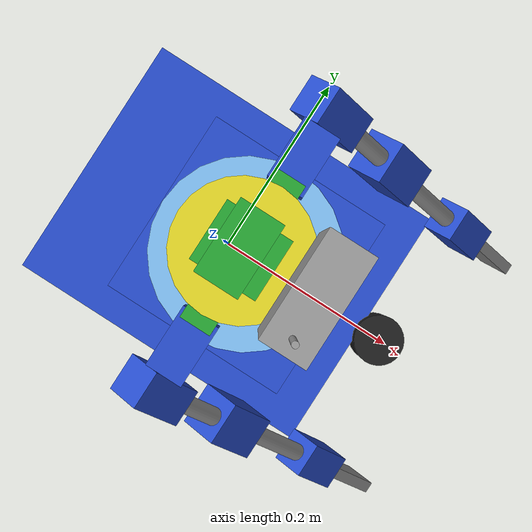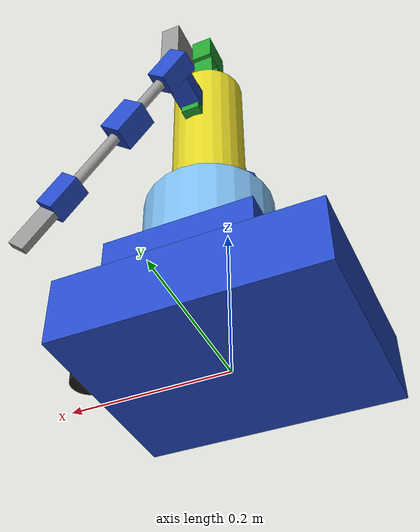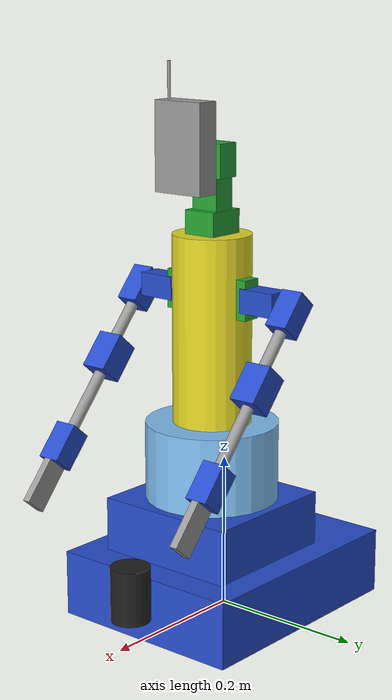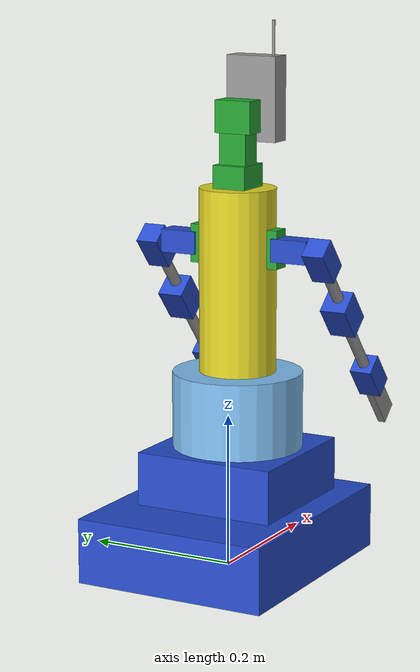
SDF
<sdf version='1.6'>
  <model name='pi_robot'>
    <link name='base_link'>
      <pose frame=''>0 0 0 0 -0 0</pose>
      <inertial>
        <pose frame=''>0.009583 0 0.053646 0 -0 0</pose>
        <mass>12</mass>
        <inertia>
          <ixx>4.01509</ixx>
          <ixy>0</ixy>
          <ixz>-0.00419323</ixz>
          <iyy>4.03082</iyy>
          <iyz>0</iyz>
          <izz>4.01572</izz>
        </inertia>
      </inertial>
      <collision name='base_link_collision'>
        <pose frame=''>0 0 0.0425 0 -0 0</pose>
        <geometry>
          <box>
            <size>0.32 0.26 0.085</size>
          </box>
        </geometry>
      </collision>
      <collision name='base_link_fixed_joint_lump__base_laser_collision_1'>
        <pose frame=''>0.18 0 0.07 0 -0 0</pose>
        <geometry>
          <cylinder>
            <length>0.07</length>
            <radius>0.025</radius>
          </cylinder>
        </geometry>
      </collision>
      <collision name='base_link_fixed_joint_lump__cpu_link_collision_2'>
        <pose frame=''>0.025 0 0.12 0 -0 0</pose>
        <geometry>
          <box>
            <size>0.19 0.19 0.07</size>
          </box>
        </geometry>
      </collision>
      <collision name='base_link_fixed_joint_lump__upper_base_link_collision_3'>
        <pose frame=''>0.025 0 0.205 0 -0 0</pose>
        <geometry>
          <cylinder>
            <length>0.1</length>
            <radius>0.085</radius>
          </cylinder>
        </geometry>
      </collision>
      <visual name='base_link_visual'>
        <pose frame=''>0 0 0.0425 0 -0 0</pose>
        <geometry>
          <box>
            <size>0.32 0.26 0.085</size>
          </box>
        </geometry>
        <material>
            <script>
            <uri>file://media/materials/scripts/gazebo.material</uri>
            <name>Gazebo/Blue</name>
            </script>
        </material>
      </visual>
      <visual name='base_link_fixed_joint_lump__base_laser_visual_1'>
        <pose frame=''>0.18 0 0.07 0 -0 0</pose>
        <geometry>
          <cylinder>
            <length>0.07</length>
            <radius>0.025</radius>
          </cylinder>
        </geometry>
        <material>
            <script>
            <uri>file://media/materials/scripts/gazebo.material</uri>
            <name>Gazebo/Black</name>
            </script>
        </material>
      </visual>
      <visual name='base_link_fixed_joint_lump__cpu_link_visual_2'>
        <pose frame=''>0.025 0 0.12 0 -0 0</pose>
        <geometry>
          <box>
            <size>0.19 0.19 0.07</size>
          </box>
        </geometry>
        <material>
            <script>
            <uri>file://media/materials/scripts/gazebo.material</uri>
            <name>Gazebo/Blue</name>
            </script>
        </material>
      </visual>
      <visual name='base_link_fixed_joint_lump__upper_base_link_visual_3'>
        <pose frame=''>0.025 0 0.205 0 -0 0</pose>
        <geometry>
          <cylinder>
            <length>0.1</length>
            <radius>0.085</radius>
          </cylinder>
        </geometry>
        <material>
            <script>
            <uri>file://media/materials/scripts/gazebo.material</uri>
            <name>Gazebo/SkyBlue</name>
            </script>
        </material>
      </visual>
    </link>

    <link name='torso_link'>
      <pose frame=''>0.025 0 0.255 0 -0 0</pose>
      <inertial>
        <pose frame=''>0 0 0.174375 0 -0 0</pose>
        <mass>2</mass>
        <inertia>
          <ixx>4.00726</ixx>
          <ixy>0</ixy>
          <ixz>0</ixz>
          <iyy>4.00424</iyy>
          <iyz>0</iyz>
          <izz>4.00303</izz>
        </inertia>
      </inertial>
      <collision name='torso_link_collision'>
        <pose frame=''>0 0 0.12 0 -0 0</pose>
        <geometry>
          <cylinder>
            <length>0.24</length>
            <radius>0.05</radius>
          </cylinder>
        </geometry>
      </collision>
      <collision name='torso_link_fixed_joint_lump__head_pan_link_collision_1'>
        <pose frame=''>0 0 0.2475 0 -0 0</pose>
        <geometry>
          <box>
            <size>0.05 0.045 0.045</size>
          </box>
        </geometry>
      </collision>
      <collision name='torso_link_fixed_joint_lump__left_shoulder_link_collision_2'>
        <pose frame=''>0 0.055 0.165 0 -0 0</pose>
        <geometry>
          <box>
            <size>0.025 0.015 0.05</size>
          </box>
        </geometry>
      </collision>
      <collision name='torso_link_fixed_joint_lump__right_shoulder_link_collision_3'>
        <pose frame=''>0 -0.055 0.165 0 -0 0</pose>
        <geometry>
          <box>
            <size>0.025 0.015 0.05</size>
          </box>
        </geometry>
      </collision>
      <visual name='torso_link_visual'>
        <pose frame=''>0 0 0.12 0 -0 0</pose>
        <geometry>
          <cylinder>
            <length>0.24</length>
            <radius>0.05</radius>
          </cylinder>
        </geometry>
        <material>
            <script>
            <uri>file://media/materials/scripts/gazebo.material</uri>
            <name>Gazebo/Yellow</name>
            </script>
        </material>
      </visual>
      <visual name='torso_link_fixed_joint_lump__head_pan_link_visual_1'>
        <pose frame=''>0 0 0.2475 0 -0 0</pose>
        <geometry>
          <box>
            <size>0.05 0.045 0.045</size>
          </box>
        </geometry>
        <material>
            <script>
            <uri>file://media/materials/scripts/gazebo.material</uri>
            <name>Gazebo/Green</name>
            </script>
        </material>
      </visual>
      <visual name='torso_link_fixed_joint_lump__left_shoulder_link_visual_2'>
        <pose frame=''>0 0.055 0.165 0 -0 0</pose>
        <geometry>
          <box>
            <size>0.025 0.015 0.05</size>
          </box>
        </geometry>
        <material>
            <script>
            <uri>file://media/materials/scripts/gazebo.material</uri>
            <name>Gazebo/Green</name>
            </script>
        </material>
      </visual>
      <visual name='torso_link_fixed_joint_lump__right_shoulder_link_visual_3'>
        <pose frame=''>0 -0.055 0.165 0 -0 0</pose>
        <geometry>
          <box>
            <size>0.025 0.015 0.05</size>
          </box>
        </geometry>
        <material>
            <script>
            <uri>file://media/materials/scripts/gazebo.material</uri>
            <name>Gazebo/Green</name>
            </script>
        </material>
      </visual>
    </link>

    <joint name='torso_joint' type='revolute'>
      <child>torso_link</child>
      <parent>base_link</parent>
      <axis>
        <xyz>0 0 1</xyz>
        <limit>
          <lower>-3.1416</lower>
          <upper>3.1416</upper>
          <effort>10</effort>
          <velocity>3</velocity>
        </limit>
        <dynamics>
          <spring_reference>0</spring_reference>
          <spring_stiffness>0</spring_stiffness>
        </dynamics>
        <use_parent_model_frame>1</use_parent_model_frame>
      </axis>
    </joint>

    <link name='head_tilt_link'>
      <pose frame=''>0.025 0 0.525 0 -0 0</pose>
      <inertial>
        <pose frame=''>0 0 0.02 0 -0 0</pose>
        <mass>0.5</mass>
        <inertia>
          <ixx>1</ixx>
          <ixy>0</ixy>
          <ixz>0</ixz>
          <iyy>1</iyy>
          <iyz>0</iyz>
          <izz>1</izz>
        </inertia>
      </inertial>
      <collision name='head_tilt_link_collision'>
        <pose frame=''>0 0 0.02 0 -0 0</pose>
        <geometry>
          <box>
            <size>0.03 0.038 0.04</size>
          </box>
        </geometry>
      </collision>
      <visual name='head_tilt_link_visual'>
        <pose frame=''>0 0 0.02 0 -0 0</pose>
        <geometry>
          <box>
            <size>0.03 0.038 0.04</size>
          </box>
        </geometry>
        <material>
            <script>
            <uri>file://media/materials/scripts/gazebo.material</uri>
            <name>Gazebo/Green</name>
            </script>
        </material>
      </visual>
    </link>

    <joint name='head_pan_joint' type='revolute'>
      <child>head_tilt_link</child>
      <parent>torso_link</parent>
      <axis>
        <xyz>0 0 1</xyz>
        <limit>
          <lower>-3.1416</lower>
          <upper>3.1416</upper>
          <effort>10</effort>
          <velocity>3</velocity>
        </limit>
        <dynamics>
          <spring_reference>0</spring_reference>
          <spring_stiffness>0</spring_stiffness>
        </dynamics>
        <use_parent_model_frame>1</use_parent_model_frame>
      </axis>
    </joint>

    <link name='neck_link'>
      <pose frame=''>0.025 0 0.565 0 -0 0</pose>
      <inertial>
        <pose frame=''>0.033333 -0.008333 0.058667 0 -0 0</pose>
        <mass>1.5</mass>
        <inertia>
          <ixx>3.00268</ixx>
          <ixy>0.000208333</ixy>
          <ixz>-0.000941667</ixz>
          <iyy>3.0033</iyy>
          <iyz>0.000704167</iyz>
          <izz>3.00104</izz>
        </inertia>
      </inertial>
      <collision name='neck_link_collision'>
        <pose frame=''>0 0 0.021 0 -0 0</pose>
        <geometry>
          <box>
            <size>0.03 0.05 0.042</size>
          </box>
        </geometry>
      </collision>
      <collision name='neck_link_fixed_joint_lump__head_link_collision_1'>
        <pose frame=''>0.05 0 0.04 0 -0 0</pose>
        <geometry>
          <box>
            <size>0.03 0.07 0.11</size>
          </box>
        </geometry>
      </collision>
      <collision name='neck_link_fixed_joint_lump__antenna_link_collision_2'>
        <pose frame=''>0.05 -0.025 0.115 0 -0 0</pose>
        <geometry>
          <cylinder>
            <length>0.05</length>
            <radius>0.002</radius>
          </cylinder>
        </geometry>
      </collision>
      <visual name='neck_link_visual'>
        <pose frame=''>0 0 0.021 0 -0 0</pose>
        <geometry>
          <box>
            <size>0.03 0.05 0.042</size>
          </box>
        </geometry>
        <material>
            <script>
            <uri>file://media/materials/scripts/gazebo.material</uri>
            <name>Gazebo/Green</name>
            </script>
        </material>
      </visual>
      <visual name='neck_link_fixed_joint_lump__head_link_visual_1'>
        <pose frame=''>0.05 0 0.04 0 -0 0</pose>
        <geometry>
          <box>
            <size>0.03 0.07 0.11</size>
          </box>
        </geometry>
        <material>
            <script>
            <uri>file://media/materials/scripts/gazebo.material</uri>
            <name>Gazebo/Grey</name>
            </script>
        </material>
      </visual>
      <visual name='neck_link_fixed_joint_lump__antenna_link_visual_2'>
        <pose frame=''>0.05 -0.025 0.115 0 -0 0</pose>
        <geometry>
          <cylinder>
            <length>0.05</length>
            <radius>0.002</radius>
          </cylinder>
        </geometry>
        <material>
            <script>
            <uri>file://media/materials/scripts/gazebo.material</uri>
            <name>Gazebo/Grey</name>
            </script>
        </material>
      </visual>
    </link>

    <joint name='head_tilt_joint' type='revolute'>
      <child>neck_link</child>
      <parent>head_tilt_link</parent>
      <axis>
        <xyz>0 1 0</xyz>
        <limit>
          <lower>-1.57</lower>
          <upper>1.57</upper>
          <effort>10</effort>
          <velocity>3</velocity>
        </limit>
        <dynamics>
          <spring_reference>0</spring_reference>
          <spring_stiffness>0</spring_stiffness>
        </dynamics>
        <use_parent_model_frame>1</use_parent_model_frame>
      </axis>
    </joint>

    <link name='left_shoulder_forward_link'>
      <pose frame=''>0.025 0.08 0.42 0 -0 0</pose>
      <inertial>
        <pose frame=''>0 0 0 0 -0 0</pose>
        <mass>0.5</mass>
        <inertia>
          <ixx>1</ixx>
          <ixy>0</ixy>
          <ixz>0</ixz>
          <iyy>1</iyy>
          <iyz>0</iyz>
          <izz>1</izz>
        </inertia>
      </inertial>
      <collision name='left_shoulder_forward_link_collision'>
        <pose frame=''>0 0 0 0 -0 0</pose>
        <geometry>
          <box>
            <size>0.03 0.05 0.03</size>
          </box>
        </geometry>
      </collision>
      <visual name='left_shoulder_forward_link_visual'>
        <pose frame=''>0 0 0 0 -0 0</pose>
        <geometry>
          <box>
            <size>0.03 0.05 0.03</size>
          </box>
        </geometry>
        <material>
            <script>
            <uri>file://media/materials/scripts/gazebo.material</uri>
            <name>Gazebo/Blue</name>
            </script>
        </material>
      </visual>
    </link>

    <joint name='left_shoulder_forward_joint' type='revolute'>
      <child>left_shoulder_forward_link</child>
      <parent>torso_link</parent>
      <axis>
        <xyz>0 0 1</xyz>
        <limit>
          <lower>-1.57</lower>
          <upper>1.57</upper>
          <effort>10</effort>
          <velocity>3</velocity>
        </limit>
        <dynamics>
          <spring_reference>0</spring_reference>
          <spring_stiffness>0</spring_stiffness>
        </dynamics>
        <use_parent_model_frame>1</use_parent_model_frame>
      </axis>
    </joint>

    <link name='left_shoulder_up_link'>
      <pose frame=''>0.025 0.12 0.41 0 -0.707 0</pose>
      <inertial>
        <pose frame=''>0 0 -0.025 1.57 -0 0</pose>
        <mass>1</mass>
        <inertia>
          <ixx>2.00062</ixx>
          <ixy>0</ixy>
          <ixz>0</ixz>
          <iyy>2</iyy>
          <iyz>-4.97704e-07</iyz>
          <izz>2.00062</izz>
        </inertia>
      </inertial>
      <collision name='left_shoulder_up_link_collision'>
        <pose frame=''>0 0 0 1.57 -0 0</pose>
        <geometry>
          <box>
            <size>0.03 0.05 0.03</size>
          </box>
        </geometry>
      </collision>
      <collision name='left_shoulder_up_link_fixed_joint_lump__left_upper_arm_link_collision_1'>
        <pose frame=''>0 0 -0.05 0 -0 0</pose>
        <geometry>
          <cylinder>
            <length>0.05</length>
            <radius>0.0075</radius>
          </cylinder>
        </geometry>
      </collision>
      <visual name='left_shoulder_up_link_visual'>
        <pose frame=''>0 0 0 1.57 -0 0</pose>
        <geometry>
          <box>
            <size>0.03 0.05 0.03</size>
          </box>
        </geometry>
        <material>
            <script>
            <uri>file://media/materials/scripts/gazebo.material</uri>
            <name>Gazebo/Blue</name>
            </script>
        </material>
      </visual>
      <visual name='left_shoulder_up_link_fixed_joint_lump__left_upper_arm_link_visual_1'>
        <pose frame=''>0 0 -0.05 0 -0 0</pose>
        <geometry>
          <cylinder>
            <length>0.05</length>
            <radius>0.0075</radius>
          </cylinder>
        </geometry>
        <material>
            <script>
            <uri>file://media/materials/scripts/gazebo.material</uri>
            <name>Gazebo/Grey</name>
            </script>
        </material>
      </visual>
    </link>

    <joint name='left_shoulder_up_joint' type='revolute'>
      <child>left_shoulder_up_link</child>
      <parent>left_shoulder_forward_link</parent>
      <axis>
        <xyz>0 1 0</xyz>
        <limit>
          <lower>-1.57</lower>
          <upper>1.57</upper>
          <effort>10</effort>
          <velocity>3</velocity>
        </limit>
        <dynamics>
          <spring_reference>0</spring_reference>
          <spring_stiffness>0</spring_stiffness>
        </dynamics>
        <use_parent_model_frame>1</use_parent_model_frame>
      </axis>
    </joint>

    <link name='left_elbow_link'>
      <pose frame=''>0.086154 0.12 0.330721 0 -0.707 0</pose>
      <inertial>
        <pose frame=''>0 0 -0.04 0 -0 1.57</pose>
        <mass>1</mass>
        <inertia>
          <ixx>2.0016</ixx>
          <ixy>0</ixy>
          <ixz>0</ixz>
          <iyy>2.0016</iyy>
          <iyz>0</iyz>
          <izz>2</izz>
        </inertia>
      </inertial>
      <collision name='left_elbow_link_collision'>
        <pose frame=''>0 0 0 0 -0 1.57</pose>
        <geometry>
          <box>
            <size>0.035 0.035 0.05</size>
          </box>
        </geometry>
      </collision>
      <collision name='left_elbow_link_fixed_joint_lump__left_lower_arm_link_collision_1'>
        <pose frame=''>0 0 -0.08 0 -0 0</pose>
        <geometry>
          <cylinder>
            <length>0.11</length>
            <radius>0.0075</radius>
          </cylinder>
        </geometry>
      </collision>
      <visual name='left_elbow_link_visual'>
        <pose frame=''>0 0 0 0 -0 1.57</pose>
        <geometry>
          <box>
            <size>0.035 0.035 0.05</size>
          </box>
        </geometry>
        <material>
            <script>
            <uri>file://media/materials/scripts/gazebo.material</uri>
            <name>Gazebo/Blue</name>
            </script>
        </material>
      </visual>
      <visual name='left_elbow_link_fixed_joint_lump__left_lower_arm_link_visual_1'>
        <pose frame=''>0 0 -0.08 0 -0 0</pose>
        <geometry>
          <cylinder>
            <length>0.11</length>
            <radius>0.0075</radius>
          </cylinder>
        </geometry>
        <material>
            <script>
            <uri>file://media/materials/scripts/gazebo.material</uri>
            <name>Gazebo/Grey</name>
            </script>
        </material>
      </visual>
    </link>

    <joint name='left_elbow_joint' type='revolute'>
      <child>left_elbow_link</child>
      <parent>left_shoulder_up_link</parent>
      <axis>
        <xyz>-0.649556 0 0.760314</xyz>
        <limit>
          <lower>-3.146</lower>
          <upper>3.146</upper>
          <effort>10</effort>
          <velocity>3</velocity>
        </limit>
        <dynamics>
          <spring_reference>0</spring_reference>
          <spring_stiffness>0</spring_stiffness>
        </dynamics>
        <use_parent_model_frame>1</use_parent_model_frame>
      </axis>
    </joint>

    <link name='left_wrist_link'>
      <pose frame=''>0.170596 0.12 0.23188 0 -0.707 0</pose>
      <inertial>
        <pose frame=''>0 0 -0.0275 1.57 -0 0</pose>
        <mass>1</mass>
        <inertia>
          <ixx>2.00076</ixx>
          <ixy>0</ixy>
          <ixz>0</ixz>
          <iyy>2</iyy>
          <iyz>-6.02222e-07</iyz>
          <izz>2.00076</izz>
        </inertia>
      </inertial>
      <collision name='left_wrist_link_collision'>
        <pose frame=''>0 0 0 1.57 -0 0</pose>
        <geometry>
          <box>
            <size>0.03 0.05 0.03</size>
          </box>
        </geometry>
      </collision>
      <collision name='left_wrist_link_fixed_joint_lump__left_hand_link_collision_1'>
        <pose frame=''>0 0 -0.055 0 -0 0</pose>
        <geometry>
          <box>
            <size>0.03 0.01 0.06</size>
          </box>
        </geometry>
      </collision>
      <visual name='left_wrist_link_visual'>
        <pose frame=''>0 0 0 1.57 -0 0</pose>
        <geometry>
          <box>
            <size>0.03 0.05 0.03</size>
          </box>
        </geometry>
        <material>
            <script>
            <uri>file://media/materials/scripts/gazebo.material</uri>
            <name>Gazebo/Blue</name>
            </script>
        </material>
      </visual>
      <visual name='left_wrist_link_fixed_joint_lump__left_hand_link_visual_1'>
        <pose frame=''>0 0 -0.055 0 -0 0</pose>
        <geometry>
          <box>
            <size>0.03 0.01 0.06</size>
          </box>
        </geometry>
        <material>
            <script>
            <uri>file://media/materials/scripts/gazebo.material</uri>
            <name>Gazebo/Grey</name>
            </script>
        </material>
      </visual>
    </link>

    <joint name='left_wrist_joint' type='revolute'>
      <child>left_wrist_link</child>
      <parent>left_elbow_link</parent>
      <axis>
        <xyz>0.760314 0 0.649556</xyz>
        <limit>
          <lower>-1.57</lower>
          <upper>1.57</upper>
          <effort>10</effort>
          <velocity>3</velocity>
        </limit>
        <dynamics>
          <spring_reference>0</spring_reference>
          <spring_stiffness>0</spring_stiffness>
        </dynamics>
        <use_parent_model_frame>1</use_parent_model_frame>
      </axis>
    </joint>

    <link name='right_shoulder_forward_link'>
      <pose frame=''>0.025 -0.08 0.42 0 -0 0</pose>
      <inertial>
        <pose frame=''>0 0 0 0 -0 0</pose>
        <mass>0.5</mass>
        <inertia>
          <ixx>1</ixx>
          <ixy>0</ixy>
          <ixz>0</ixz>
          <iyy>1</iyy>
          <iyz>0</iyz>
          <izz>1</izz>
        </inertia>
      </inertial>
      <collision name='right_shoulder_forward_link_collision'>
        <pose frame=''>0 0 0 0 -0 0</pose>
        <geometry>
          <box>
            <size>0.03 0.05 0.03</size>
          </box>
        </geometry>
      </collision>
      <visual name='right_shoulder_forward_link_visual'>
        <pose frame=''>0 0 0 0 -0 0</pose>
        <geometry>
          <box>
            <size>0.03 0.05 0.03</size>
          </box>
        </geometry>
        <material>
            <script>
            <uri>file://media/materials/scripts/gazebo.material</uri>
            <name>Gazebo/Blue</name>
            </script>
        </material>
      </visual>
    </link>

    <joint name='right_shoulder_forward_joint' type='revolute'>
      <child>right_shoulder_forward_link</child>
      <parent>torso_link</parent>
      <axis>
        <xyz>0 0 1</xyz>
        <limit>
          <lower>-1.57</lower>
          <upper>1.57</upper>
          <effort>10</effort>
          <velocity>3</velocity>
        </limit>
        <dynamics>
          <spring_reference>0</spring_reference>
          <spring_stiffness>0</spring_stiffness>
        </dynamics>
        <use_parent_model_frame>1</use_parent_model_frame>
      </axis>
    </joint>

    <link name='right_shoulder_up_link'>
      <pose frame=''>0.025 -0.12 0.41 0 -0.707 0</pose>
      <inertial>
        <pose frame=''>0 0 -0.025 1.57 -0 0</pose>
        <mass>1</mass>
        <inertia>
          <ixx>2.00062</ixx>
          <ixy>0</ixy>
          <ixz>0</ixz>
          <iyy>2</iyy>
          <iyz>-4.97704e-07</iyz>
          <izz>2.00062</izz>
        </inertia>
      </inertial>
      <collision name='right_shoulder_up_link_collision'>
        <pose frame=''>0 0 0 1.57 -0 0</pose>
        <geometry>
          <box>
            <size>0.03 0.05 0.03</size>
          </box>
        </geometry>
      </collision>
      <collision name='right_shoulder_up_link_fixed_joint_lump__right_upper_arm_link_collision_1'>
        <pose frame=''>0 0 -0.05 0 -0 0</pose>
        <geometry>
          <cylinder>
            <length>0.05</length>
            <radius>0.0075</radius>
          </cylinder>
        </geometry>
      </collision>
      <visual name='right_shoulder_up_link_visual'>
        <pose frame=''>0 0 0 1.57 -0 0</pose>
        <geometry>
          <box>
            <size>0.03 0.05 0.03</size>
          </box>
        </geometry>
        <material>
            <script>
            <uri>file://media/materials/scripts/gazebo.material</uri>
            <name>Gazebo/Blue</name>
            </script>
        </material>
      </visual>
      <visual name='right_shoulder_up_link_fixed_joint_lump__right_upper_arm_link_visual_1'>
        <pose frame=''>0 0 -0.05 0 -0 0</pose>
        <geometry>
          <cylinder>
            <length>0.05</length>
            <radius>0.0075</radius>
          </cylinder>
        </geometry>
        <material>
            <script>
            <uri>file://media/materials/scripts/gazebo.material</uri>
            <name>Gazebo/Grey</name>
            </script>
        </material>
      </visual>
    </link>

    <joint name='right_shoulder_up_joint' type='revolute'>
      <child>right_shoulder_up_link</child>
      <parent>right_shoulder_forward_link</parent>
      <axis>
        <xyz>0 1 0</xyz>
        <limit>
          <lower>-1.57</lower>
          <upper>1.57</upper>
          <effort>10</effort>
          <velocity>3</velocity>
        </limit>
        <dynamics>
          <spring_reference>0</spring_reference>
          <spring_stiffness>0</spring_stiffness>
        </dynamics>
        <use_parent_model_frame>1</use_parent_model_frame>
      </axis>
    </joint>

    <link name='right_elbow_link'>
      <pose frame=''>0.086154 -0.12 0.330721 0 -0.707 0</pose>
      <inertial>
        <pose frame=''>0 0 -0.04 0 -0 1.57</pose>
        <mass>1</mass>
        <inertia>
          <ixx>2.0016</ixx>
          <ixy>0</ixy>
          <ixz>0</ixz>
          <iyy>2.0016</iyy>
          <iyz>0</iyz>
          <izz>2</izz>
        </inertia>
      </inertial>
      <collision name='right_elbow_link_collision'>
        <pose frame=''>0 0 0 0 -0 1.57</pose>
        <geometry>
          <box>
            <size>0.035 0.035 0.05</size>
          </box>
        </geometry>
      </collision>
      <collision name='right_elbow_link_fixed_joint_lump__right_lower_arm_link_collision_1'>
        <pose frame=''>0 0 -0.08 0 -0 0</pose>
        <geometry>
          <cylinder>
            <length>0.11</length>
            <radius>0.0075</radius>
          </cylinder>
        </geometry>
      </collision>
      <visual name='right_elbow_link_visual'>
        <pose frame=''>0 0 0 0 -0 1.57</pose>
        <geometry>
          <box>
            <size>0.035 0.035 0.05</size>
          </box>
        </geometry>
        <material>
            <script>
            <uri>file://media/materials/scripts/gazebo.material</uri>
            <name>Gazebo/Blue</name>
            </script>
        </material>
      </visual>
      <visual name='right_elbow_link_fixed_joint_lump__right_lower_arm_link_visual_1'>
        <pose frame=''>0 0 -0.08 0 -0 0</pose>
        <geometry>
          <cylinder>
            <length>0.11</length>
            <radius>0.0075</radius>
          </cylinder>
        </geometry>
        <material>
            <script>
            <uri>file://media/materials/scripts/gazebo.material</uri>
            <name>Gazebo/Grey</name>
            </script>
        </material>
      </visual>
    </link>

    <joint name='right_elbow_joint' type='revolute'>
      <child>right_elbow_link</child>
      <parent>right_shoulder_up_link</parent>
      <axis>
        <xyz>-0.649556 0 0.760314</xyz>
        <limit>
          <lower>-3.146</lower>
          <upper>3.146</upper>
          <effort>10</effort>
          <velocity>3</velocity>
        </limit>
        <dynamics>
          <spring_reference>0</spring_reference>
          <spring_stiffness>0</spring_stiffness>
        </dynamics>
        <use_parent_model_frame>1</use_parent_model_frame>
      </axis>
    </joint>

    <link name='right_wrist_link'>
      <pose frame=''>0.170596 -0.12 0.23188 0 -0.707 0</pose>
      <inertial>
        <pose frame=''>0 0 -0.0275 1.57 -0 0</pose>
        <mass>1</mass>
        <inertia>
          <ixx>2.00076</ixx>
          <ixy>0</ixy>
          <ixz>0</ixz>
          <iyy>2</iyy>
          <iyz>-6.02222e-07</iyz>
          <izz>2.00076</izz>
        </inertia>
      </inertial>
      <collision name='right_wrist_link_collision'>
        <pose frame=''>0 0 0 1.57 -0 0</pose>
        <geometry>
          <box>
            <size>0.03 0.05 0.03</size>
          </box>
        </geometry>
      </collision>
      <collision name='right_wrist_link_fixed_joint_lump__right_hand_link_collision_1'>
        <pose frame=''>0 0 -0.055 0 -0 0</pose>
        <geometry>
          <box>
            <size>0.03 0.01 0.06</size>
          </box>
        </geometry>
      </collision>
      <visual name='right_wrist_link_visual'>
        <pose frame=''>0 0 0 1.57 -0 0</pose>
        <geometry>
          <box>
            <size>0.03 0.05 0.03</size>
          </box>
        </geometry>
        <material>
            <script>
            <uri>file://media/materials/scripts/gazebo.material</uri>
            <name>Gazebo/Blue</name>
            </script>
        </material>
      </visual>
      <visual name='right_wrist_link_fixed_joint_lump__right_hand_link_visual_1'>
        <pose frame=''>0 0 -0.055 0 -0 0</pose>
        <geometry>
          <box>
            <size>0.03 0.01 0.06</size>
          </box>
        </geometry>
        <material>
            <script>
            <uri>file://media/materials/scripts/gazebo.material</uri>
            <name>Gazebo/Grey</name>
            </script>
        </material>
      </visual>
    </link>

    <joint name='right_wrist_joint' type='revolute'>
      <child>right_wrist_link</child>
      <parent>right_elbow_link</parent>
      <axis>
        <xyz>0.760314 0 0.649556</xyz>
        <limit>
          <lower>-1.57</lower>
          <upper>1.57</upper>
          <effort>10</effort>
          <velocity>3</velocity>
        </limit>
        <dynamics>
          <spring_reference>0</spring_reference>
          <spring_stiffness>0</spring_stiffness>
        </dynamics>
        <use_parent_model_frame>1</use_parent_model_frame>
      </axis>
    </joint>

  </model>
</sdf>
